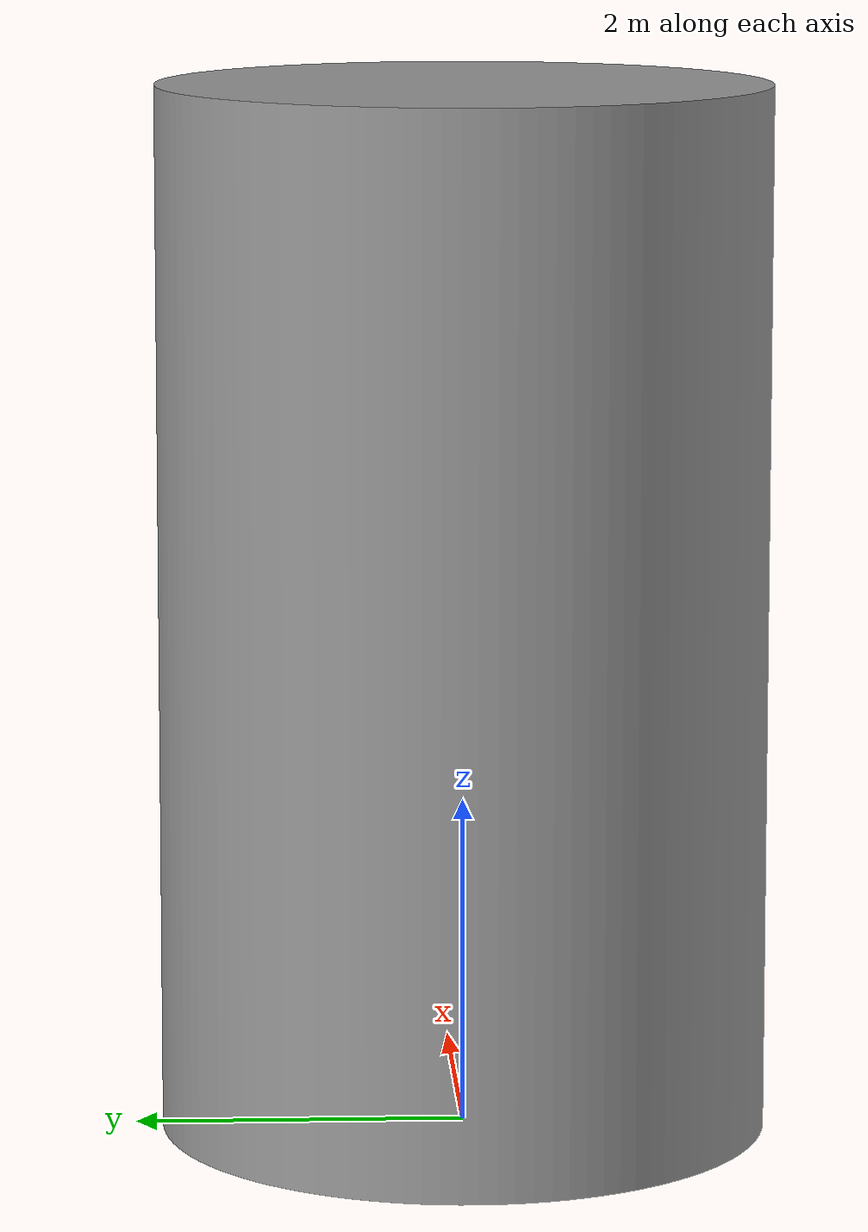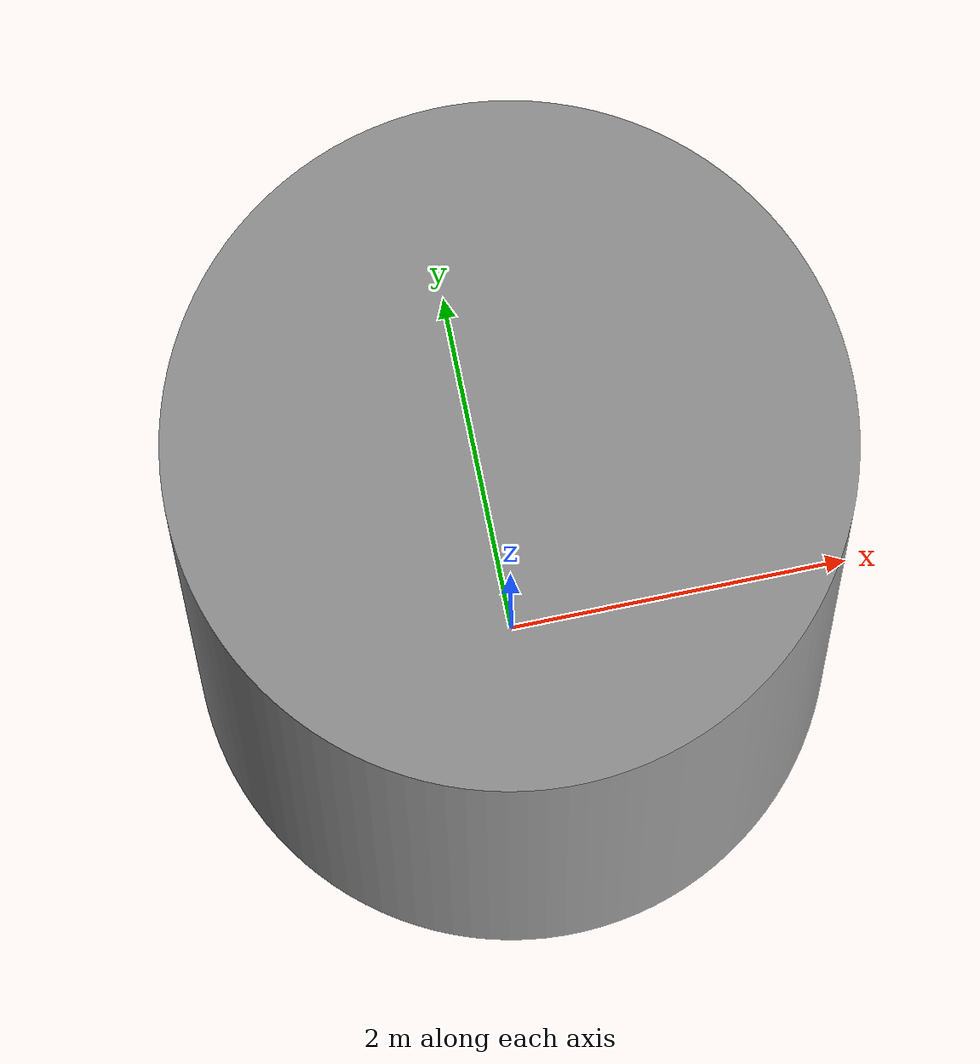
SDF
<?xml version='1.0'?>
<sdf version='1.6'>
  <model name='Pillar'>
    <link name='link'>
      <pose frame=''>0 0 0 0 -0 0</pose>
      <inertial>
        <mass>1</mass>
        <inertia>
          <ixx>0.166667</ixx>
          <ixy>0</ixy>
          <ixz>0</ixz>
          <iyy>0.166667</iyy>
          <iyz>0</iyz>
          <izz>0.166667</izz>
        </inertia>
        <pose frame=''>0 0 0 0 -0 0</pose>
      </inertial>
      <gravity>1</gravity>
      <self_collide>0</self_collide>
      <kinematic>0</kinematic>
      <visual name='visual'>
        <pose frame=''>0 0 0 0 -0 0</pose>
        <geometry>
          <mesh>
            <uri>model://Pillar/pillar.dae</uri>
            <scale>0.006346939 0.006346939 0.006346939</scale>
          </mesh>
        </geometry>
        <material>
          <lighting>1</lighting>
          <script>
            <uri>file://media/materials/scripts/gazebo.material</uri>
            <name>Gazebo/Grey</name>
          </script>
          <ambient>0.3 0.3 0.3 1</ambient>
          <diffuse>0.7 0.7 0.7 1</diffuse>
          <specular>0.01 0.01 0.01 1</specular>
          <emissive>0 0 0 1</emissive>
          <shader type='vertex'>
            <normal_map>__default__</normal_map>
          </shader>
        </material>
        <cast_shadows>1</cast_shadows>
        <transparency>0</transparency>
      </visual>
      <collision name='collision'>
        <laser_retro>0</laser_retro>
        <max_contacts>10</max_contacts>
        <pose frame=''>0 0 0 0 -0 0</pose>
        <geometry>
          <mesh>
            <uri>model://Pillar/pillar.dae</uri>
            <scale>0.006346939 0.006346939 0.006346939</scale>
          </mesh>
        </geometry>
      </collision>
    </link>
    <static>1</static>
    <allow_auto_disable>1</allow_auto_disable>
  </model>
</sdf>
